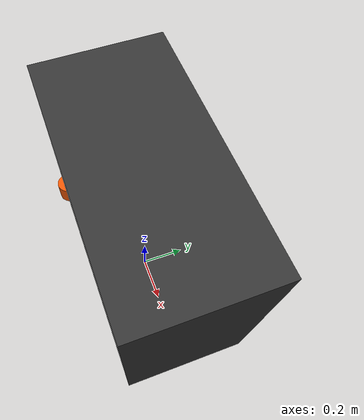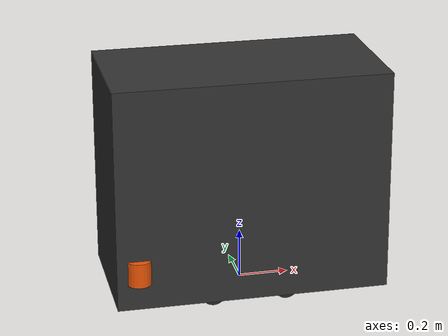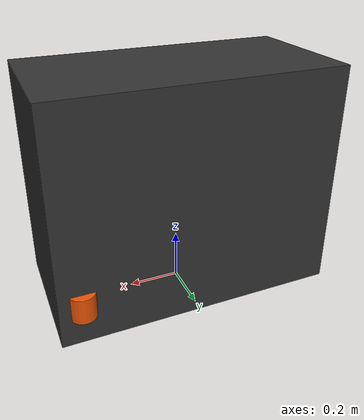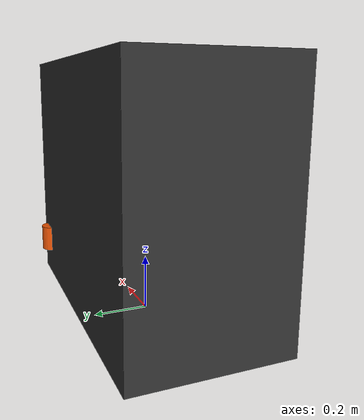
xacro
<?xml version="1.0"?>
<!-- Basic mecanum drive mobile base -->
<robot xmlns:xacro="http://www.ros.org/wiki/xacro" name="mecanumdrive_robot">
    <xacro:arg name="use_mock_hardware" default="false" />
    <xacro:arg name="prefix" default="cmexaiii" />

    <!-- Robot constants and properties -->
    <xacro:include filename="$(find cmeresearch_description)/urdf/cmexaiii/cmexaiii_properties.urdf.xacro" />

    <!-- Import Rviz colors -->
    <xacro:include filename="$(find cmeresearch_description)/urdf/materials.xacro" />

    <!-- Import robot description -->
    <xacro:include filename="$(find cmeresearch_description)/urdf/cmexaiii/cmexaiii_description.urdf.xacro" />

    <!-- Import ros2_control description -->
    <xacro:include filename="$(find cmeresearch_description)/urdf/cmexaiii/cmexaiii_mecanum.ros2_control.xacro" />

    <!-- Instantiate the robot -->
    <xacro:cmexaiii prefix="$(arg prefix)"/>

    <!-- Add ros2_control -->
    <xacro:cmexaiii_ros2_control name="CMEXAIII" prefix="$(arg prefix)" use_mock_hardware="$(arg use_mock_hardware)"/>

</robot>

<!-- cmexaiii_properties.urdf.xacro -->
<robot xmlns:xacro="http://www.ros.org/wiki/xacro">

  <xacro:property name="PI" value="3.1415926535897931" />

  <!-- wheelbase = distance between wheel axis (x-direction)
       example: distance between wheel_front_right and wheel_rear_right-->
  <xacro:property name="wheelbase" value="0.300" />
  <!-- track = distance between wheels (y-direction)
       example: distance between wheel_front_right and wheel_front_left -->
  <xacro:property name="track" value="0.354" />
  <xacro:property name="gear_ratio" value="5.0" />
  <xacro:property name="steps_per_revolution" value="200.0" />
  <!-- vertical offset means height -->
  <xacro:property name="wheel_vertical_offset" value="0.01" />
  <xacro:property name="footprint_vertical_offset" value="0.025" />

  <xacro:property name="wheel_radius" value="0.050" />
  <xacro:property name="wheel_width" value="0.050" />

  <xacro:property name="chassis_length" value="1.100" />
  <xacro:property name="chassis_width" value="0.550" />
  <xacro:property name="chassis_height" value="0.950" />
  <xacro:property name="chassis_mass" value="20.0" /> <!-- correct this later -->

  <xacro:property name="dummy_inertia" value="1e-09"/>

  <xacro:property name="mount_spacing" value="0.120" />

</robot>

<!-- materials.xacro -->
<robot>
  <material name="dark_grey"><color rgba="0.2 0.2 0.2 1.0" /></material>
  <material name="light_grey"><color rgba="0.4 0.4 0.4 1.0" /></material>
  <material name="yellow"><color rgba="0.8 0.8 0.0 1.0" /></material>
  <material name="black"><color rgba="0.15 0.15 0.15 1.0" /></material>
  <material name="green"><color rgba="0.25 0.75 0.25 1.0" /></material>
  <material name="orange"><color rgba="0.92 0.33 0.02 1.0" /></material>
  <material name="white"><color rgba="1.0 1.0 1.0 1.0"/></material>
</robot>

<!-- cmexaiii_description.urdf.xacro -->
<robot xmlns:xacro="http://www.ros.org/wiki/xacro">

  <xacro:macro name="cmexaiii">

  <xacro:property name="z_offset" value="-${chassis_height/2}" /> <!-- Space btw top of beam and the each joint -->
  <xacro:property name="wheel_mass" value="0.3"/>
  <!-- Base Link -->
  <link name="base_link">

  </link>

  <joint name="base_link_joint" type="fixed">
    <origin xyz="0 0 ${wheel_radius/2}" rpy="0 0 0" />
    <parent link="base_link"/>
    <child link="chassis_link" />
  </joint>

  <link name="chassis_link">
    <visual>
      <origin xyz="${chassis_length/2} ${-chassis_width/2} 0" rpy="0 0 ${PI/2}" />
      <geometry>
        <mesh filename="package://cmeresearch_description/meshes/cmexaiii/cmexaiii-base.stl" scale="0.001 0.001 0.001"/>
      </geometry>
      <material name="dark_grey" />
    </visual>
    <collision>
      <origin xyz="${chassis_length/2} ${chassis_width/2} ${chassis_height/2}"/>
      <geometry>
        <box size="${chassis_length} ${chassis_width} ${chassis_height}"/>
      </geometry>
    </collision>
    <inertial>
      <!-- Center of mass -->
      <origin xyz="0.012  0.002 0.067" rpy="0 0 0"/>
      <mass value="16.523"/>
      <!-- Moments of inertia: ( chassis without wheels ) -->
      <inertia
        ixx="0.3136" ixy="-0.0008" ixz="0.0164"
        iyy="0.3922" iyz="-0.0009"
        izz="0.4485"/>
      </inertial>
  </link>

    <!-- Front left wheel -->
    <joint name="front_left_wheel_joint" type="continuous">
      <parent link="base_link"/>
      <child link="front_left_wheel"/>
      <origin xyz="${wheelbase/2} ${track/2} ${wheel_radius/2}" rpy="0 0 0"/>
      <axis xyz="0 1 0"/>
      <dynamics damping="0.2"/>
      <limit effort="100" velocity="1.0"/>
    </joint>

    <!-- front left wheel Link -->
    <link name="front_left_wheel">
      <collision>
        <origin xyz="0 0 0" rpy="${PI/2} 0 0"/>
        <geometry>
          <cylinder length="${wheel_width}" radius="${wheel_radius}"/>
        </geometry>
      </collision>

      <visual>
        <origin xyz="0 0 0" rpy="${PI/2} 0 0"/>
        <geometry>
          <cylinder length="${wheel_width}" radius="${wheel_radius}"/>
        </geometry>
        <material name="black"/>
      </visual>

      <inertial>
        <origin xyz="0 0 0" rpy="${PI/2} 0 0"/>
        <mass value="${wheel_mass}"/>
        <inertia
                ixx="${wheel_mass / 12.0 * (3*wheel_radius*wheel_radius + wheel_width*wheel_width)}" ixy="0.0" ixz="0.0"
                iyy="${wheel_mass / 12.0 * (3*wheel_radius*wheel_radius + wheel_width*wheel_width)}" iyz="0.0"
                izz="${wheel_mass / 2.0 * wheel_radius*wheel_radius}"/>
      </inertial>
    </link>

    <!-- Front right wheel -->
    <joint name="front_right_wheel_joint" type="continuous">
      <parent link="base_link"/>
      <child link="front_right_wheel"/>
      <origin xyz="${-wheelbase/2} ${track/2} ${wheel_radius/2}" rpy="0 0 0"/>
      <axis xyz="0 1 0"/>
      <dynamics damping="0.2"/>
      <limit effort="100" velocity="1.0"/>
    </joint>

    <!-- front right wheel Link -->
    <link name="front_right_wheel">
      <collision>
        <origin xyz="0 0 0" rpy="${PI/2} 0 0"/>
        <geometry>
          <cylinder length="${wheel_width}" radius="${wheel_radius}"/>
        </geometry>
      </collision>

      <visual>
        <origin xyz="0 0 0" rpy="${PI/2} 0 0"/>
        <geometry>
          <cylinder length="${wheel_width}" radius="${wheel_radius}"/>
        </geometry>
        <material name="black"/>
      </visual>

      <inertial>
        <origin xyz="0 0 0" rpy="${PI/2} 0 0"/>
        <mass value="${wheel_mass}"/>
        <inertia
                ixx="${wheel_mass / 12.0 * (3*wheel_radius*wheel_radius + wheel_width*wheel_width)}" ixy="0.0" ixz="0.0"
                iyy="${wheel_mass / 12.0 * (3*wheel_radius*wheel_radius + wheel_width*wheel_width)}" iyz="0.0"
                izz="${wheel_mass / 2.0 * wheel_radius*wheel_radius}"/>
      </inertial>
    </link>

    <!-- rear left wheel -->
    <joint name="rear_left_wheel_joint" type="continuous">
      <parent link="base_link"/>
      <child link="rear_left_wheel"/>
      <origin xyz="${wheelbase/2} ${-track/2} ${wheel_radius/2}" rpy="0 0 0"/>
      <axis xyz="0 1 0"/>
      <dynamics damping="0.2"/>
      <limit effort="100" velocity="1.0"/>
    </joint>

    <!-- rear left wheel Link -->
    <link name="rear_left_wheel">
      <collision>
        <origin xyz="0 0 0" rpy="${PI/2} 0 0"/>
        <geometry>
          <cylinder length="${wheel_width}" radius="${wheel_radius}"/>
        </geometry>
      </collision>

      <visual>
        <origin xyz="0 0 0" rpy="${PI/2} 0 0"/>
        <geometry>
          <cylinder length="${wheel_width}" radius="${wheel_radius}"/>
        </geometry>
        <material name="black"/>
      </visual>

      <inertial>
        <origin xyz="0 0 0" rpy="${PI/2} 0 0"/>
        <mass value="${wheel_mass}"/>
        <inertia
                ixx="${wheel_mass / 12.0 * (3*wheel_radius*wheel_radius + wheel_width*wheel_width)}" ixy="0.0" ixz="0.0"
                iyy="${wheel_mass / 12.0 * (3*wheel_radius*wheel_radius + wheel_width*wheel_width)}" iyz="0.0"
                izz="${wheel_mass / 2.0 * wheel_radius*wheel_radius}"/>
      </inertial>
    </link>

    <!-- rear right wheel -->
    <joint name="rear_right_wheel_joint" type="continuous">
      <parent link="base_link"/>
      <child link="rear_right_wheel"/>
      <origin xyz="${-wheelbase/2} ${-track/2} ${wheel_radius/2}" rpy="0 0 0"/>
      <axis xyz="0 1 0"/>
      <dynamics damping="0.2"/>
      <limit effort="100" velocity="1.0"/>
    </joint>

    <!-- rear right wheel Link -->
    <link name="rear_right_wheel">
      <collision>
        <origin xyz="0 0 0" rpy="${PI/2} 0 0"/>
        <geometry>
          <cylinder length="${wheel_width}" radius="${wheel_radius}"/>
        </geometry>
      </collision>

      <visual>
        <origin xyz="0 0 0" rpy="${PI/2} 0 0"/>
        <geometry>
          <cylinder length="${wheel_width}" radius="${wheel_radius}"/>
        </geometry>
        <material name="black"/>
      </visual>

      <inertial>
        <origin xyz="0 0 0" rpy="${PI/2} 0 0"/>
        <mass value="${wheel_mass}"/>
        <inertia
                ixx="${wheel_mass / 12.0 * (3*wheel_radius*wheel_radius + wheel_width*wheel_width)}" ixy="0.0" ixz="0.0"
                iyy="${wheel_mass / 12.0 * (3*wheel_radius*wheel_radius + wheel_width*wheel_width)}" iyz="0.0"
                izz="${wheel_mass / 2.0 * wheel_radius*wheel_radius}"/>
      </inertial>
    </link>

    <!-- base_laser_front_joint -->
    <joint name="base_laser_front_joint" type="fixed">
      <origin xyz="0.460 0.257 0.18" rpy="0 0 -0.785" />
      <parent link="base_link"/>
      <child link="base_laser_front_left" />
    </joint>

    <!-- front left laser Link -->
    <link name="base_laser_front_left">
      <collision>
        <origin xyz="0 0 0" rpy="0 0 0"/>
        <geometry>
          <cylinder length="0.1" radius="0.05"/>
        </geometry>
      </collision>

      <visual>
        <origin xyz="0 0 0" rpy="0 0 0"/>
        <geometry>
          <cylinder length="0.1" radius="0.05"/>
        </geometry>
        <material name="orange"/>
      </visual>

      <inertial>
        <origin xyz="0 0 0" rpy="0 0 0"/>
        <mass value="1"/>
        <inertia
                ixx="${wheel_mass / 12.0 * (3*wheel_radius*wheel_radius + wheel_width*wheel_width)}" ixy="0.0" ixz="0.0"
                iyy="${wheel_mass / 12.0 * (3*wheel_radius*wheel_radius + wheel_width*wheel_width)}" iyz="0.0"
                izz="${wheel_mass / 2.0 * wheel_radius*wheel_radius}"/>
      </inertial>
    </link>

    <!-- base_laser_rear_joint -->
    <joint name="base_laser_rear_joint" type="fixed">
      <origin xyz="-0.460 -0.257 0.18" rpy="0 0 2.3562" />
      <parent link="base_link"/>
      <child link="base_laser_rear_right" />
    </joint>

    <!-- front left laser Link -->
    <link name="base_laser_rear_right">
      <collision>
        <origin xyz="0 0 0" rpy="0 0 0"/>
        <geometry>
          <cylinder length="0.1" radius="0.05"/>
        </geometry>
      </collision>

      <visual>
        <origin xyz="0 0 0" rpy="0 0 0"/>
        <geometry>
          <cylinder length="0.1" radius="0.05"/>
        </geometry>
        <material name="orange"/>
      </visual>

      <inertial>
        <origin xyz="0 0 0" rpy="0 0 0"/>
        <mass value="1"/>
        <inertia
                ixx="${wheel_mass / 12.0 * (3*wheel_radius*wheel_radius + wheel_width*wheel_width)}" ixy="0.0" ixz="0.0"
                iyy="${wheel_mass / 12.0 * (3*wheel_radius*wheel_radius + wheel_width*wheel_width)}" iyz="0.0"
                izz="${wheel_mass / 2.0 * wheel_radius*wheel_radius}"/>
      </inertial>
    </link>

  </xacro:macro>
</robot>
